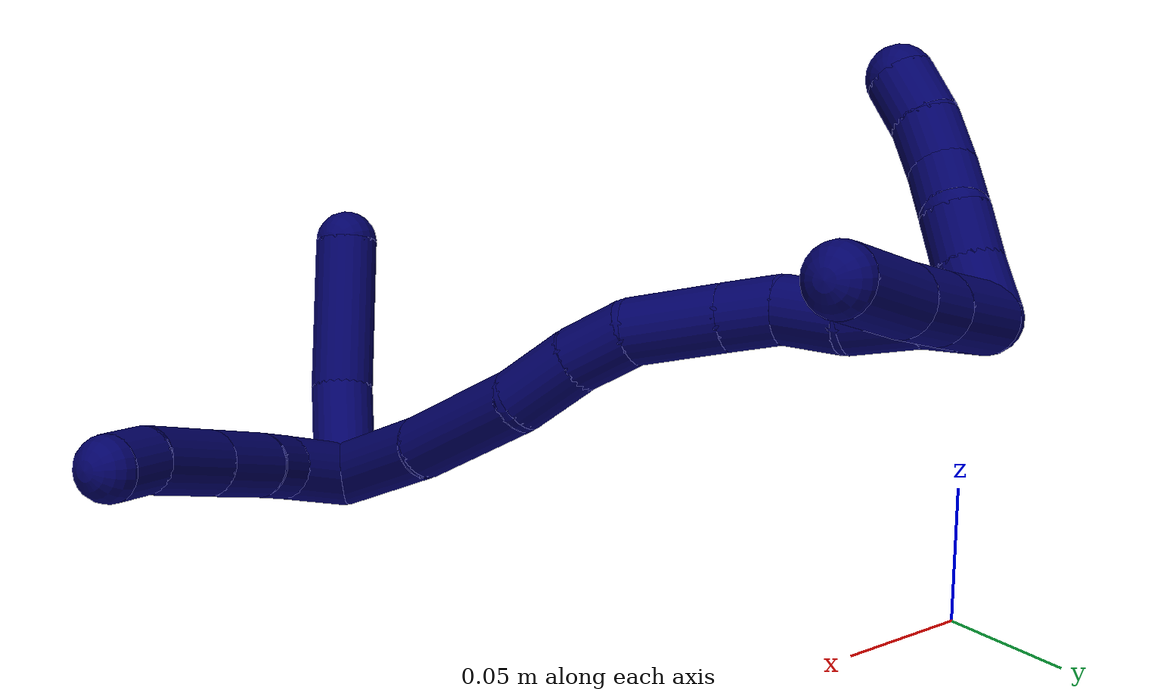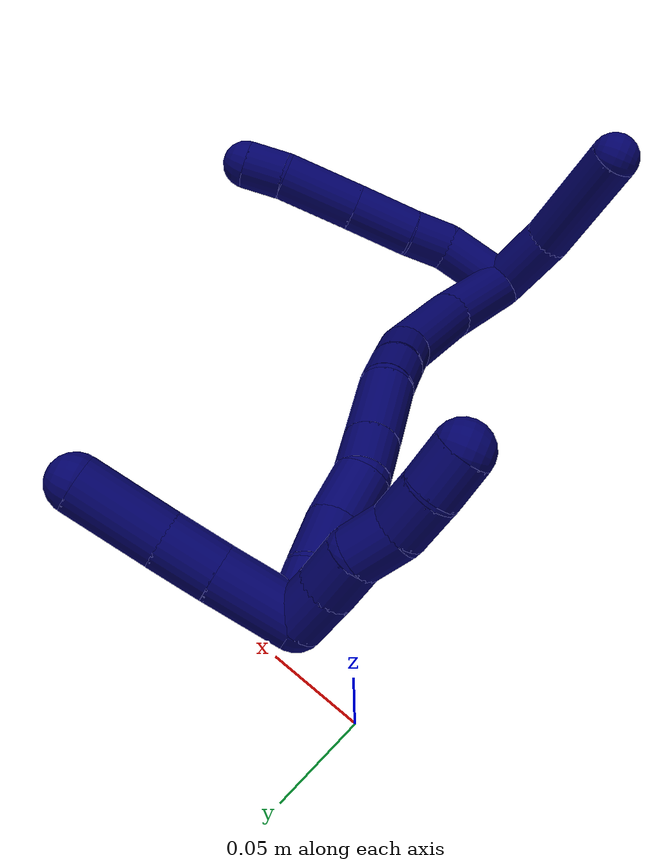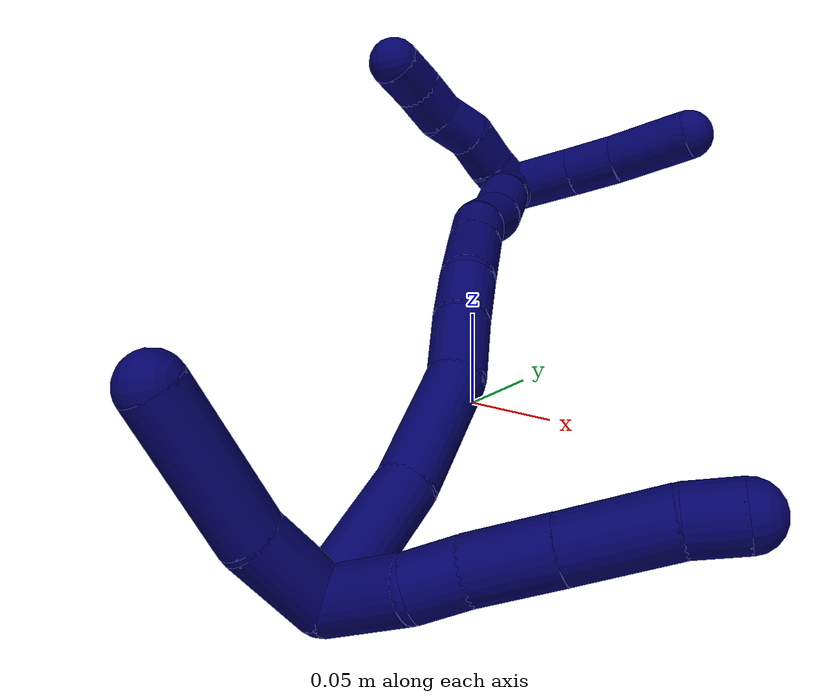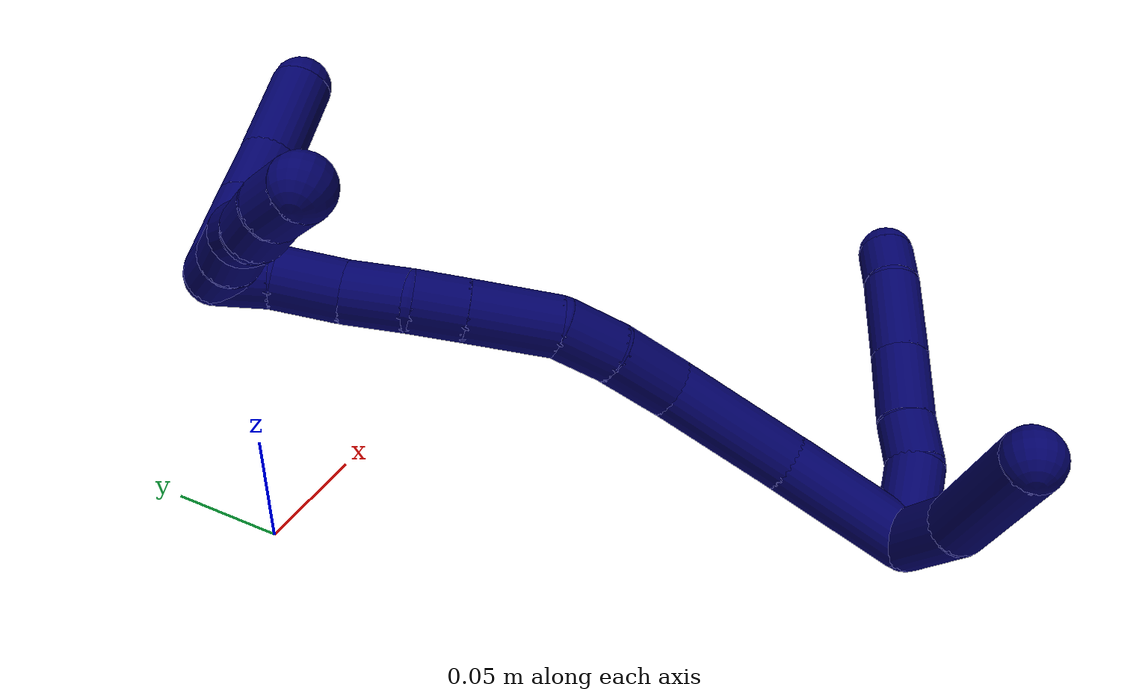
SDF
<sdf version="1.7">
 <world name="default">
  <model name="7">
   <static>0</static>
   <link name="7">
    <collision name="collision-cylinder-e_1_2_8">
     <pose>0.002784 0.002046 -0.017207 -3.02327 0.159282 -1.86465</pose>
     <geometry><cylinder><radius>0.0125</radius><length>0.0351</length></cylinder></geometry>
     <surface>
      <friction><ode><mu>1.16</mu><mu2>1.16</mu2><slip1>0</slip1><slip2>0</slip2></ode></friction>
      <contact><ode><kp>1e+06</kp><kd>1</kd><max_vel>0</max_vel><min_depth>0.001</min_depth></ode></contact>
     </surface>
    </collision>
    <visual name="visual-cylinder-e_1_2_8">
     <pose>0.002784 0.002046 -0.017207 -3.02327 0.159282 -1.86465</pose>
     <geometry><cylinder><radius>0.0125</radius><length>0.0351</length></cylinder></geometry>
     <material><ambient>0.003922 0 0.403922 1</ambient></material>
    </visual>
    <collision name="collision-cylinder-e_2_8_9">
     <pose>0.004096 0.005831 -0.044493 -2.97063 -0.142832 1.39124</pose>
     <geometry><cylinder><radius>0.0125</radius><length>0.020667</length></cylinder></geometry>
     <surface>
      <friction><ode><mu>1.16</mu><mu2>1.16</mu2><slip1>0</slip1><slip2>0</slip2></ode></friction>
      <contact><ode><kp>1e+06</kp><kd>1</kd><max_vel>0</max_vel><min_depth>0.001</min_depth></ode></contact>
     </surface>
    </collision>
    <visual name="visual-cylinder-e_2_8_9">
     <pose>0.004096 0.005831 -0.044493 -2.97063 -0.142832 1.39124</pose>
     <geometry><cylinder><radius>0.0125</radius><length>0.020667</length></cylinder></geometry>
     <material><ambient>0.003922 0 0.403922 1</ambient></material>
    </visual>
    <collision name="collision-cylinder-e_3_9_10">
     <pose>0.001803 0.009622 -0.070991 -3.01734 -0.049663 0.759753</pose>
     <geometry><cylinder><radius>0.0125</radius><length>0.033134</length></cylinder></geometry>
     <surface>
      <friction><ode><mu>1.16</mu><mu2>1.16</mu2><slip1>0</slip1><slip2>0</slip2></ode></friction>
      <contact><ode><kp>1e+06</kp><kd>1</kd><max_vel>0</max_vel><min_depth>0.001</min_depth></ode></contact>
     </surface>
    </collision>
    <visual name="visual-cylinder-e_3_9_10">
     <pose>0.001803 0.009622 -0.070991 -3.01734 -0.049663 0.759753</pose>
     <geometry><cylinder><radius>0.0125</radius><length>0.033134</length></cylinder></geometry>
     <material><ambient>0.003922 0 0.403922 1</ambient></material>
    </visual>
    <collision name="collision-cylinder-e_4_10_11">
     <pose>-0.000267 0.014255 -0.107343 -3.01278 -0.062007 0.89642</pose>
     <geometry><cylinder><radius>0.0125</radius><length>0.040275</length></cylinder></geometry>
     <surface>
      <friction><ode><mu>1.16</mu><mu2>1.16</mu2><slip1>0</slip1><slip2>0</slip2></ode></friction>
      <contact><ode><kp>1e+06</kp><kd>1</kd><max_vel>0</max_vel><min_depth>0.001</min_depth></ode></contact>
     </surface>
    </collision>
    <visual name="visual-cylinder-e_4_10_11">
     <pose>-0.000267 0.014255 -0.107343 -3.01278 -0.062007 0.89642</pose>
     <geometry><cylinder><radius>0.0125</radius><length>0.040275</length></cylinder></geometry>
     <material><ambient>0.003922 0 0.403922 1</ambient></material>
    </visual>
    <collision name="collision-cylinder-e_5_11_6">
     <pose>-0.002541 0.016444 -0.137628 3.10367 -0.09868 -2.40835</pose>
     <geometry><cylinder><radius>0.0125</radius><length>0.020823</length></cylinder></geometry>
     <surface>
      <friction><ode><mu>1.16</mu><mu2>1.16</mu2><slip1>0</slip1><slip2>0</slip2></ode></friction>
      <contact><ode><kp>1e+06</kp><kd>1</kd><max_vel>0</max_vel><min_depth>0.001</min_depth></ode></contact>
     </surface>
    </collision>
    <visual name="visual-cylinder-e_5_11_6">
     <pose>-0.002541 0.016444 -0.137628 3.10367 -0.09868 -2.40835</pose>
     <geometry><cylinder><radius>0.0125</radius><length>0.020823</length></cylinder></geometry>
     <material><ambient>0.003922 0 0.403922 1</ambient></material>
    </visual>
    <collision name="collision-cylinder-e_1_2_12">
     <pose>0.009461 0.014918 0.006562 -1.15639 0.525972 -0.347834</pose>
     <geometry><cylinder><radius>0.0125</radius><length>0.037689</length></cylinder></geometry>
     <surface>
      <friction><ode><mu>1.16</mu><mu2>1.16</mu2><slip1>0</slip1><slip2>0</slip2></ode></friction>
      <contact><ode><kp>1e+06</kp><kd>1</kd><max_vel>0</max_vel><min_depth>0.001</min_depth></ode></contact>
     </surface>
    </collision>
    <visual name="visual-cylinder-e_1_2_12">
     <pose>0.009461 0.014918 0.006562 -1.15639 0.525972 -0.347834</pose>
     <geometry><cylinder><radius>0.0125</radius><length>0.037689</length></cylinder></geometry>
     <material><ambient>0.003922 0 0.403922 1</ambient></material>
    </visual>
    <collision name="collision-cylinder-e_2_12_5">
     <pose>0.029963 0.058221 0.019683 -1.34371 0.362269 -0.289263</pose>
     <geometry><cylinder><radius>0.0125</radius><length>0.062311</length></cylinder></geometry>
     <surface>
      <friction><ode><mu>1.16</mu><mu2>1.16</mu2><slip1>0</slip1><slip2>0</slip2></ode></friction>
      <contact><ode><kp>1e+06</kp><kd>1</kd><max_vel>0</max_vel><min_depth>0.001</min_depth></ode></contact>
     </surface>
    </collision>
    <visual name="visual-cylinder-e_2_12_5">
     <pose>0.029963 0.058221 0.019683 -1.34371 0.362269 -0.289263</pose>
     <geometry><cylinder><radius>0.0125</radius><length>0.062311</length></cylinder></geometry>
     <material><ambient>0.003922 0 0.403922 1</ambient></material>
    </visual>
    <collision name="collision-cylinder-e_1_2_13">
     <pose>-0.023066 0.013605 -0.009305 -2.17069 -0.950341 1.54571</pose>
     <geometry><cylinder><radius>0.0125</radius><length>0.0567</length></cylinder></geometry>
     <surface>
      <friction><ode><mu>1.16</mu><mu2>1.16</mu2><slip1>0</slip1><slip2>0</slip2></ode></friction>
      <contact><ode><kp>1e+06</kp><kd>1</kd><max_vel>0</max_vel><min_depth>0.001</min_depth></ode></contact>
     </surface>
    </collision>
    <visual name="visual-cylinder-e_1_2_13">
     <pose>-0.023066 0.013605 -0.009305 -2.17069 -0.950341 1.54571</pose>
     <geometry><cylinder><radius>0.0125</radius><length>0.0567</length></cylinder></geometry>
     <material><ambient>0.003922 0 0.403922 1</ambient></material>
    </visual>
    <collision name="collision-cylinder-e_2_13_14">
     <pose>-0.06821 0.043458 -0.024743 -1.93164 -0.904269 1.22468</pose>
     <geometry><cylinder><radius>0.0125</radius><length>0.056179</length></cylinder></geometry>
     <surface>
      <friction><ode><mu>1.16</mu><mu2>1.16</mu2><slip1>0</slip1><slip2>0</slip2></ode></friction>
      <contact><ode><kp>1e+06</kp><kd>1</kd><max_vel>0</max_vel><min_depth>0.001</min_depth></ode></contact>
     </surface>
    </collision>
    <visual name="visual-cylinder-e_2_13_14">
     <pose>-0.06821 0.043458 -0.024743 -1.93164 -0.904269 1.22468</pose>
     <geometry><cylinder><radius>0.0125</radius><length>0.056179</length></cylinder></geometry>
     <material><ambient>0.003922 0 0.403922 1</ambient></material>
    </visual>
    <collision name="collision-cylinder-e_3_14_15">
     <pose>-0.100358 0.070422 -0.030775 -1.56154 -0.754327 0.748013</pose>
     <geometry><cylinder><radius>0.0125</radius><length>0.029412</length></cylinder></geometry>
     <surface>
      <friction><ode><mu>1.16</mu><mu2>1.16</mu2><slip1>0</slip1><slip2>0</slip2></ode></friction>
      <contact><ode><kp>1e+06</kp><kd>1</kd><max_vel>0</max_vel><min_depth>0.001</min_depth></ode></contact>
     </surface>
    </collision>
    <visual name="visual-cylinder-e_3_14_15">
     <pose>-0.100358 0.070422 -0.030775 -1.56154 -0.754327 0.748013</pose>
     <geometry><cylinder><radius>0.0125</radius><length>0.029412</length></cylinder></geometry>
     <material><ambient>0.003922 0 0.403922 1</ambient></material>
    </visual>
    <collision name="collision-cylinder-e_4_15_16">
     <pose>-0.120069 0.089045 -0.030524 -1.55155 -0.883811 0.869017</pose>
     <geometry><cylinder><radius>0.0125</radius><length>0.024939</length></cylinder></geometry>
     <surface>
      <friction><ode><mu>1.16</mu><mu2>1.16</mu2><slip1>0</slip1><slip2>0</slip2></ode></friction>
      <contact><ode><kp>1e+06</kp><kd>1</kd><max_vel>0</max_vel><min_depth>0.001</min_depth></ode></contact>
     </surface>
    </collision>
    <visual name="visual-cylinder-e_4_15_16">
     <pose>-0.120069 0.089045 -0.030524 -1.55155 -0.883811 0.869017</pose>
     <geometry><cylinder><radius>0.0125</radius><length>0.024939</length></cylinder></geometry>
     <material><ambient>0.003922 0 0.403922 1</ambient></material>
    </visual>
    <collision name="collision-cylinder-e_5_16_17">
     <pose>-0.146318 0.104147 -0.028337 -1.29522 -1.14776 0.909634</pose>
     <geometry><cylinder><radius>0.0125</radius><length>0.036428</length></cylinder></geometry>
     <surface>
      <friction><ode><mu>1.16</mu><mu2>1.16</mu2><slip1>0</slip1><slip2>0</slip2></ode></friction>
      <contact><ode><kp>1e+06</kp><kd>1</kd><max_vel>0</max_vel><min_depth>0.001</min_depth></ode></contact>
     </surface>
    </collision>
    <visual name="visual-cylinder-e_5_16_17">
     <pose>-0.146318 0.104147 -0.028337 -1.29522 -1.14776 0.909634</pose>
     <geometry><cylinder><radius>0.0125</radius><length>0.036428</length></cylinder></geometry>
     <material><ambient>0.003922 0 0.403922 1</ambient></material>
    </visual>
    <collision name="collision-cylinder-e_6_17_18">
     <pose>-0.172749 0.115481 -0.025135 -1.29582 -1.15812 0.919097</pose>
     <geometry><cylinder><radius>0.0125</radius><length>0.021445</length></cylinder></geometry>
     <surface>
      <friction><ode><mu>1.16</mu><mu2>1.16</mu2><slip1>0</slip1><slip2>0</slip2></ode></friction>
      <contact><ode><kp>1e+06</kp><kd>1</kd><max_vel>0</max_vel><min_depth>0.001</min_depth></ode></contact>
     </surface>
    </collision>
    <visual name="visual-cylinder-e_6_17_18">
     <pose>-0.172749 0.115481 -0.025135 -1.29582 -1.15812 0.919097</pose>
     <geometry><cylinder><radius>0.0125</radius><length>0.021445</length></cylinder></geometry>
     <material><ambient>0.003922 0 0.403922 1</ambient></material>
    </visual>
    <collision name="collision-cylinder-e_7_18_19">
     <pose>-0.195193 0.121295 -0.025112 -2.17031 -1.41142 2.03245</pose>
     <geometry><cylinder><radius>0.0125</radius><length>0.025568</length></cylinder></geometry>
     <surface>
      <friction><ode><mu>1.16</mu><mu2>1.16</mu2><slip1>0</slip1><slip2>0</slip2></ode></friction>
      <contact><ode><kp>1e+06</kp><kd>1</kd><max_vel>0</max_vel><min_depth>0.001</min_depth></ode></contact>
     </surface>
    </collision>
    <visual name="visual-cylinder-e_7_18_19">
     <pose>-0.195193 0.121295 -0.025112 -2.17031 -1.41142 2.03245</pose>
     <geometry><cylinder><radius>0.0125</radius><length>0.025568</length></cylinder></geometry>
     <material><ambient>0.003922 0 0.403922 1</ambient></material>
    </visual>
    <collision name="collision-cylinder-e_8_19_20">
     <pose>-0.220492 0.127803 -0.025921 -1.50154 -1.20576 1.14185</pose>
     <geometry><cylinder><radius>0.0125</radius><length>0.027143</length></cylinder></geometry>
     <surface>
      <friction><ode><mu>1.16</mu><mu2>1.16</mu2><slip1>0</slip1><slip2>0</slip2></ode></friction>
      <contact><ode><kp>1e+06</kp><kd>1</kd><max_vel>0</max_vel><min_depth>0.001</min_depth></ode></contact>
     </surface>
    </collision>
    <visual name="visual-cylinder-e_8_19_20">
     <pose>-0.220492 0.127803 -0.025921 -1.50154 -1.20576 1.14185</pose>
     <geometry><cylinder><radius>0.0125</radius><length>0.027143</length></cylinder></geometry>
     <material><ambient>0.003922 0 0.403922 1</ambient></material>
    </visual>
    <collision name="collision-cylinder-e_9_20_1">
     <pose>-0.244081 0.13455 -0.025009 -1.27801 -1.38968 1.10898</pose>
     <geometry><cylinder><radius>0.0125</radius><length>0.022187</length></cylinder></geometry>
     <surface>
      <friction><ode><mu>1.16</mu><mu2>1.16</mu2><slip1>0</slip1><slip2>0</slip2></ode></friction>
      <contact><ode><kp>1e+06</kp><kd>1</kd><max_vel>0</max_vel><min_depth>0.001</min_depth></ode></contact>
     </surface>
    </collision>
    <visual name="visual-cylinder-e_9_20_1">
     <pose>-0.244081 0.13455 -0.025009 -1.27801 -1.38968 1.10898</pose>
     <geometry><cylinder><radius>0.0125</radius><length>0.022187</length></cylinder></geometry>
     <material><ambient>0.003922 0 0.403922 1</ambient></material>
    </visual>
    <collision name="collision-cylinder-e_1_1_21">
     <pose>-0.253092 0.138039 -0.042237 -3.05329 0.105993 -1.75265</pose>
     <geometry><cylinder><radius>0.0125</radius><length>0.035951</length></cylinder></geometry>
     <surface>
      <friction><ode><mu>1.16</mu><mu2>1.16</mu2><slip1>0</slip1><slip2>0</slip2></ode></friction>
      <contact><ode><kp>1e+06</kp><kd>1</kd><max_vel>0</max_vel><min_depth>0.001</min_depth></ode></contact>
     </surface>
    </collision>
    <visual name="visual-cylinder-e_1_1_21">
     <pose>-0.253092 0.138039 -0.042237 -3.05329 0.105993 -1.75265</pose>
     <geometry><cylinder><radius>0.0125</radius><length>0.035951</length></cylinder></geometry>
     <material><ambient>0.003922 0 0.403922 1</ambient></material>
    </visual>
    <collision name="collision-cylinder-e_2_21_22">
     <pose>-0.249681 0.140798 -0.072112 -3.04395 0.123797 -1.80641</pose>
     <geometry><cylinder><radius>0.0125</radius><length>0.024442</length></cylinder></geometry>
     <surface>
      <friction><ode><mu>1.16</mu><mu2>1.16</mu2><slip1>0</slip1><slip2>0</slip2></ode></friction>
      <contact><ode><kp>1e+06</kp><kd>1</kd><max_vel>0</max_vel><min_depth>0.001</min_depth></ode></contact>
     </surface>
    </collision>
    <visual name="visual-cylinder-e_2_21_22">
     <pose>-0.249681 0.140798 -0.072112 -3.04395 0.123797 -1.80641</pose>
     <geometry><cylinder><radius>0.0125</radius><length>0.024442</length></cylinder></geometry>
     <material><ambient>0.003922 0 0.403922 1</ambient></material>
    </visual>
    <collision name="collision-cylinder-e_3_22_4">
     <pose>-0.245691 0.14475 -0.103633 -3.00013 0.125627 -1.45197</pose>
     <geometry><cylinder><radius>0.0125</radius><length>0.039607</length></cylinder></geometry>
     <surface>
      <friction><ode><mu>1.16</mu><mu2>1.16</mu2><slip1>0</slip1><slip2>0</slip2></ode></friction>
      <contact><ode><kp>1e+06</kp><kd>1</kd><max_vel>0</max_vel><min_depth>0.001</min_depth></ode></contact>
     </surface>
    </collision>
    <visual name="visual-cylinder-e_3_22_4">
     <pose>-0.245691 0.14475 -0.103633 -3.00013 0.125627 -1.45197</pose>
     <geometry><cylinder><radius>0.0125</radius><length>0.039607</length></cylinder></geometry>
     <material><ambient>0.003922 0 0.403922 1</ambient></material>
    </visual>
    <collision name="collision-cylinder-e_1_1_23">
     <pose>-0.248782 0.143691 -0.021405 -1.17417 0.670254 -0.455393</pose>
     <geometry><cylinder><radius>0.0125</radius><length>0.02</length></cylinder></geometry>
     <surface>
      <friction><ode><mu>1.16</mu><mu2>1.16</mu2><slip1>0</slip1><slip2>0</slip2></ode></friction>
      <contact><ode><kp>1e+06</kp><kd>1</kd><max_vel>0</max_vel><min_depth>0.001</min_depth></ode></contact>
     </surface>
    </collision>
    <visual name="visual-cylinder-e_1_1_23">
     <pose>-0.248782 0.143691 -0.021405 -1.17417 0.670254 -0.455393</pose>
     <geometry><cylinder><radius>0.0125</radius><length>0.02</length></cylinder></geometry>
     <material><ambient>0.003922 0 0.403922 1</ambient></material>
    </visual>
    <collision name="collision-cylinder-e_2_23_24">
     <pose>-0.236866 0.158754 -0.015911 -1.26579 0.60702 -0.451643</pose>
     <geometry><cylinder><radius>0.0125</radius><length>0.02</length></cylinder></geometry>
     <surface>
      <friction><ode><mu>1.16</mu><mu2>1.16</mu2><slip1>0</slip1><slip2>0</slip2></ode></friction>
      <contact><ode><kp>1e+06</kp><kd>1</kd><max_vel>0</max_vel><min_depth>0.001</min_depth></ode></contact>
     </surface>
    </collision>
    <visual name="visual-cylinder-e_2_23_24">
     <pose>-0.236866 0.158754 -0.015911 -1.26579 0.60702 -0.451643</pose>
     <geometry><cylinder><radius>0.0125</radius><length>0.02</length></cylinder></geometry>
     <material><ambient>0.003922 0 0.403922 1</ambient></material>
    </visual>
    <collision name="collision-cylinder-e_3_24_25">
     <pose>-0.225175 0.172542 -0.008086 -0.837951 0.641835 -0.293937</pose>
     <geometry><cylinder><radius>0.0125</radius><length>0.02</length></cylinder></geometry>
     <surface>
      <friction><ode><mu>1.16</mu><mu2>1.16</mu2><slip1>0</slip1><slip2>0</slip2></ode></friction>
      <contact><ode><kp>1e+06</kp><kd>1</kd><max_vel>0</max_vel><min_depth>0.001</min_depth></ode></contact>
     </surface>
    </collision>
    <visual name="visual-cylinder-e_3_24_25">
     <pose>-0.225175 0.172542 -0.008086 -0.837951 0.641835 -0.293937</pose>
     <geometry><cylinder><radius>0.0125</radius><length>0.02</length></cylinder></geometry>
     <material><ambient>0.003922 0 0.403922 1</ambient></material>
    </visual>
    <collision name="collision-cylinder-e_4_25_26">
     <pose>-0.212812 0.185716 -4.3e-05 -1.21482 0.691442 -0.490626</pose>
     <geometry><cylinder><radius>0.0125</radius><length>0.02</length></cylinder></geometry>
     <surface>
      <friction><ode><mu>1.16</mu><mu2>1.16</mu2><slip1>0</slip1><slip2>0</slip2></ode></friction>
      <contact><ode><kp>1e+06</kp><kd>1</kd><max_vel>0</max_vel><min_depth>0.001</min_depth></ode></contact>
     </surface>
    </collision>
    <visual name="visual-cylinder-e_4_25_26">
     <pose>-0.212812 0.185716 -4.3e-05 -1.21482 0.691442 -0.490626</pose>
     <geometry><cylinder><radius>0.0125</radius><length>0.02</length></cylinder></geometry>
     <material><ambient>0.003922 0 0.403922 1</ambient></material>
    </visual>
    <collision name="collision-cylinder-e_5_26_3">
     <pose>-0.198964 0.199134 0.005043 -1.20123 0.84374 -0.59657</pose>
     <geometry><cylinder><radius>0.0125</radius><length>0.02</length></cylinder></geometry>
     <surface>
      <friction><ode><mu>1.16</mu><mu2>1.16</mu2><slip1>0</slip1><slip2>0</slip2></ode></friction>
      <contact><ode><kp>1e+06</kp><kd>1</kd><max_vel>0</max_vel><min_depth>0.001</min_depth></ode></contact>
     </surface>
    </collision>
    <visual name="visual-cylinder-e_5_26_3">
     <pose>-0.198964 0.199134 0.005043 -1.20123 0.84374 -0.59657</pose>
     <geometry><cylinder><radius>0.0125</radius><length>0.02</length></cylinder></geometry>
     <material><ambient>0.003922 0 0.403922 1</ambient></material>
    </visual>
    <collision name="collision-sphere-3">
     <pose>-0.191492 0.205332 0.007443 0 -0 0</pose>
     <geometry><sphere><radius>0.0125</radius></sphere></geometry>
     <surface>
      <friction><ode><mu>1.16</mu><mu2>1.16</mu2><slip1>0</slip1><slip2>0</slip2></ode></friction>
      <contact><ode><kp>1e+06</kp><kd>1</kd><max_vel>0</max_vel><min_depth>0.001</min_depth></ode></contact>
     </surface>
    </collision>
    <visual name="visual-sphere-3">
     <pose>-0.191492 0.205332 0.007443 0 -0 0</pose>
     <geometry><sphere><radius>0.0125</radius></sphere></geometry>
     <material><ambient>0.003922 0 0.403922 1</ambient></material>
    </visual>
    <collision name="collision-sphere-26">
     <pose>-0.206435 0.192936 0.002642 0 -0 0</pose>
     <geometry><sphere><radius>0.0125</radius></sphere></geometry>
     <surface>
      <friction><ode><mu>1.16</mu><mu2>1.16</mu2><slip1>0</slip1><slip2>0</slip2></ode></friction>
      <contact><ode><kp>1e+06</kp><kd>1</kd><max_vel>0</max_vel><min_depth>0.001</min_depth></ode></contact>
     </surface>
    </collision>
    <visual name="visual-sphere-26">
     <pose>-0.206435 0.192936 0.002642 0 -0 0</pose>
     <geometry><sphere><radius>0.0125</radius></sphere></geometry>
     <material><ambient>0.003922 0 0.403922 1</ambient></material>
    </visual>
    <collision name="collision-sphere-25">
     <pose>-0.219188 0.178495 -0.002728 0 -0 0</pose>
     <geometry><sphere><radius>0.0125</radius></sphere></geometry>
     <surface>
      <friction><ode><mu>1.16</mu><mu2>1.16</mu2><slip1>0</slip1><slip2>0</slip2></ode></friction>
      <contact><ode><kp>1e+06</kp><kd>1</kd><max_vel>0</max_vel><min_depth>0.001</min_depth></ode></contact>
     </surface>
    </collision>
    <visual name="visual-sphere-25">
     <pose>-0.219188 0.178495 -0.002728 0 -0 0</pose>
     <geometry><sphere><radius>0.0125</radius></sphere></geometry>
     <material><ambient>0.003922 0 0.403922 1</ambient></material>
    </visual>
    <collision name="collision-sphere-24">
     <pose>-0.231161 0.166588 -0.013445 0 -0 0</pose>
     <geometry><sphere><radius>0.0125</radius></sphere></geometry>
     <surface>
      <friction><ode><mu>1.16</mu><mu2>1.16</mu2><slip1>0</slip1><slip2>0</slip2></ode></friction>
      <contact><ode><kp>1e+06</kp><kd>1</kd><max_vel>0</max_vel><min_depth>0.001</min_depth></ode></contact>
     </surface>
    </collision>
    <visual name="visual-sphere-24">
     <pose>-0.231161 0.166588 -0.013445 0 -0 0</pose>
     <geometry><sphere><radius>0.0125</radius></sphere></geometry>
     <material><ambient>0.003922 0 0.403922 1</ambient></material>
    </visual>
    <collision name="collision-sphere-23">
     <pose>-0.24257 0.150919 -0.018378 0 -0 0</pose>
     <geometry><sphere><radius>0.0125</radius></sphere></geometry>
     <surface>
      <friction><ode><mu>1.16</mu><mu2>1.16</mu2><slip1>0</slip1><slip2>0</slip2></ode></friction>
      <contact><ode><kp>1e+06</kp><kd>1</kd><max_vel>0</max_vel><min_depth>0.001</min_depth></ode></contact>
     </surface>
    </collision>
    <visual name="visual-sphere-23">
     <pose>-0.24257 0.150919 -0.018378 0 -0 0</pose>
     <geometry><sphere><radius>0.0125</radius></sphere></geometry>
     <material><ambient>0.003922 0 0.403922 1</ambient></material>
    </visual>
    <collision name="collision-sphere-4">
     <pose>-0.243209 0.147521 -0.123084 0 -0 0</pose>
     <geometry><sphere><radius>0.0125</radius></sphere></geometry>
     <surface>
      <friction><ode><mu>1.16</mu><mu2>1.16</mu2><slip1>0</slip1><slip2>0</slip2></ode></friction>
      <contact><ode><kp>1e+06</kp><kd>1</kd><max_vel>0</max_vel><min_depth>0.001</min_depth></ode></contact>
     </surface>
    </collision>
    <visual name="visual-sphere-4">
     <pose>-0.243209 0.147521 -0.123084 0 -0 0</pose>
     <geometry><sphere><radius>0.0125</radius></sphere></geometry>
     <material><ambient>0.003922 0 0.403922 1</ambient></material>
    </visual>
    <collision name="collision-sphere-22">
     <pose>-0.248172 0.14198 -0.084181 0 -0 0</pose>
     <geometry><sphere><radius>0.0125</radius></sphere></geometry>
     <surface>
      <friction><ode><mu>1.16</mu><mu2>1.16</mu2><slip1>0</slip1><slip2>0</slip2></ode></friction>
      <contact><ode><kp>1e+06</kp><kd>1</kd><max_vel>0</max_vel><min_depth>0.001</min_depth></ode></contact>
     </surface>
    </collision>
    <visual name="visual-sphere-22">
     <pose>-0.248172 0.14198 -0.084181 0 -0 0</pose>
     <geometry><sphere><radius>0.0125</radius></sphere></geometry>
     <material><ambient>0.003922 0 0.403922 1</ambient></material>
    </visual>
    <collision name="collision-sphere-21">
     <pose>-0.25119 0.139616 -0.060042 0 -0 0</pose>
     <geometry><sphere><radius>0.0125</radius></sphere></geometry>
     <surface>
      <friction><ode><mu>1.16</mu><mu2>1.16</mu2><slip1>0</slip1><slip2>0</slip2></ode></friction>
      <contact><ode><kp>1e+06</kp><kd>1</kd><max_vel>0</max_vel><min_depth>0.001</min_depth></ode></contact>
     </surface>
    </collision>
    <visual name="visual-sphere-21">
     <pose>-0.25119 0.139616 -0.060042 0 -0 0</pose>
     <geometry><sphere><radius>0.0125</radius></sphere></geometry>
     <material><ambient>0.003922 0 0.403922 1</ambient></material>
    </visual>
    <collision name="collision-sphere-1">
     <pose>-0.254994 0.136463 -0.024432 0 -0 0</pose>
     <geometry><sphere><radius>0.0125</radius></sphere></geometry>
     <surface>
      <friction><ode><mu>1.16</mu><mu2>1.16</mu2><slip1>0</slip1><slip2>0</slip2></ode></friction>
      <contact><ode><kp>1e+06</kp><kd>1</kd><max_vel>0</max_vel><min_depth>0.001</min_depth></ode></contact>
     </surface>
    </collision>
    <visual name="visual-sphere-1">
     <pose>-0.254994 0.136463 -0.024432 0 -0 0</pose>
     <geometry><sphere><radius>0.0125</radius></sphere></geometry>
     <material><ambient>0.003922 0 0.403922 1</ambient></material>
    </visual>
    <collision name="collision-sphere-6">
     <pose>-0.003567 0.016051 -0.147982 0 -0 0</pose>
     <geometry><sphere><radius>0.0125</radius></sphere></geometry>
     <surface>
      <friction><ode><mu>1.16</mu><mu2>1.16</mu2><slip1>0</slip1><slip2>0</slip2></ode></friction>
      <contact><ode><kp>1e+06</kp><kd>1</kd><max_vel>0</max_vel><min_depth>0.001</min_depth></ode></contact>
     </surface>
    </collision>
    <visual name="visual-sphere-6">
     <pose>-0.003567 0.016051 -0.147982 0 -0 0</pose>
     <geometry><sphere><radius>0.0125</radius></sphere></geometry>
     <material><ambient>0.003922 0 0.403922 1</ambient></material>
    </visual>
    <collision name="collision-sphere-11">
     <pose>-0.001515 0.016837 -0.127275 0 -0 0</pose>
     <geometry><sphere><radius>0.0125</radius></sphere></geometry>
     <surface>
      <friction><ode><mu>1.16</mu><mu2>1.16</mu2><slip1>0</slip1><slip2>0</slip2></ode></friction>
      <contact><ode><kp>1e+06</kp><kd>1</kd><max_vel>0</max_vel><min_depth>0.001</min_depth></ode></contact>
     </surface>
    </collision>
    <visual name="visual-sphere-11">
     <pose>-0.001515 0.016837 -0.127275 0 -0 0</pose>
     <geometry><sphere><radius>0.0125</radius></sphere></geometry>
     <material><ambient>0.003922 0 0.403922 1</ambient></material>
    </visual>
    <collision name="collision-sphere-10">
     <pose>0.00098 0.011673 -0.08741 0 -0 0</pose>
     <geometry><sphere><radius>0.0125</radius></sphere></geometry>
     <surface>
      <friction><ode><mu>1.16</mu><mu2>1.16</mu2><slip1>0</slip1><slip2>0</slip2></ode></friction>
      <contact><ode><kp>1e+06</kp><kd>1</kd><max_vel>0</max_vel><min_depth>0.001</min_depth></ode></contact>
     </surface>
    </collision>
    <visual name="visual-sphere-10">
     <pose>0.00098 0.011673 -0.08741 0 -0 0</pose>
     <geometry><sphere><radius>0.0125</radius></sphere></geometry>
     <material><ambient>0.003922 0 0.403922 1</ambient></material>
    </visual>
    <collision name="collision-sphere-9">
     <pose>0.002625 0.007572 -0.054572 0 -0 0</pose>
     <geometry><sphere><radius>0.0125</radius></sphere></geometry>
     <surface>
      <friction><ode><mu>1.16</mu><mu2>1.16</mu2><slip1>0</slip1><slip2>0</slip2></ode></friction>
      <contact><ode><kp>1e+06</kp><kd>1</kd><max_vel>0</max_vel><min_depth>0.001</min_depth></ode></contact>
     </surface>
    </collision>
    <visual name="visual-sphere-9">
     <pose>0.002625 0.007572 -0.054572 0 -0 0</pose>
     <geometry><sphere><radius>0.0125</radius></sphere></geometry>
     <material><ambient>0.003922 0 0.403922 1</ambient></material>
    </visual>
    <collision name="collision-sphere-2">
     <geometry><sphere><radius>0.0125</radius></sphere></geometry>
     <surface>
      <friction><ode><mu>1.16</mu><mu2>1.16</mu2><slip1>0</slip1><slip2>0</slip2></ode></friction>
      <contact><ode><kp>1e+06</kp><kd>1</kd><max_vel>0</max_vel><min_depth>0.001</min_depth></ode></contact>
     </surface>
    </collision>
    <visual name="visual-sphere-2">
     <geometry><sphere><radius>0.0125</radius></sphere></geometry>
     <material><ambient>0.003922 0 0.403922 1</ambient></material>
    </visual>
    <collision name="collision-sphere-19">
     <pose>-0.207814 0.12297 -0.026256 0 -0 0</pose>
     <geometry><sphere><radius>0.0125</radius></sphere></geometry>
     <surface>
      <friction><ode><mu>1.16</mu><mu2>1.16</mu2><slip1>0</slip1><slip2>0</slip2></ode></friction>
      <contact><ode><kp>1e+06</kp><kd>1</kd><max_vel>0</max_vel><min_depth>0.001</min_depth></ode></contact>
     </surface>
    </collision>
    <visual name="visual-sphere-19">
     <pose>-0.207814 0.12297 -0.026256 0 -0 0</pose>
     <geometry><sphere><radius>0.0125</radius></sphere></geometry>
     <material><ambient>0.003922 0 0.403922 1</ambient></material>
    </visual>
    <collision name="collision-sphere-8">
     <pose>0.005567 0.004091 -0.034414 0 -0 0</pose>
     <geometry><sphere><radius>0.0125</radius></sphere></geometry>
     <surface>
      <friction><ode><mu>1.16</mu><mu2>1.16</mu2><slip1>0</slip1><slip2>0</slip2></ode></friction>
      <contact><ode><kp>1e+06</kp><kd>1</kd><max_vel>0</max_vel><min_depth>0.001</min_depth></ode></contact>
     </surface>
    </collision>
    <visual name="visual-sphere-8">
     <pose>0.005567 0.004091 -0.034414 0 -0 0</pose>
     <geometry><sphere><radius>0.0125</radius></sphere></geometry>
     <material><ambient>0.003922 0 0.403922 1</ambient></material>
    </visual>
    <collision name="collision-sphere-12">
     <pose>0.018922 0.029836 0.013124 0 -0 0</pose>
     <geometry><sphere><radius>0.0125</radius></sphere></geometry>
     <surface>
      <friction><ode><mu>1.16</mu><mu2>1.16</mu2><slip1>0</slip1><slip2>0</slip2></ode></friction>
      <contact><ode><kp>1e+06</kp><kd>1</kd><max_vel>0</max_vel><min_depth>0.001</min_depth></ode></contact>
     </surface>
    </collision>
    <visual name="visual-sphere-12">
     <pose>0.018922 0.029836 0.013124 0 -0 0</pose>
     <geometry><sphere><radius>0.0125</radius></sphere></geometry>
     <material><ambient>0.003922 0 0.403922 1</ambient></material>
    </visual>
    <collision name="collision-sphere-5">
     <pose>0.041005 0.086607 0.026242 0 -0 0</pose>
     <geometry><sphere><radius>0.0125</radius></sphere></geometry>
     <surface>
      <friction><ode><mu>1.16</mu><mu2>1.16</mu2><slip1>0</slip1><slip2>0</slip2></ode></friction>
      <contact><ode><kp>1e+06</kp><kd>1</kd><max_vel>0</max_vel><min_depth>0.001</min_depth></ode></contact>
     </surface>
    </collision>
    <visual name="visual-sphere-5">
     <pose>0.041005 0.086607 0.026242 0 -0 0</pose>
     <geometry><sphere><radius>0.0125</radius></sphere></geometry>
     <material><ambient>0.003922 0 0.403922 1</ambient></material>
    </visual>
    <collision name="collision-sphere-13">
     <pose>-0.046132 0.02721 -0.018611 0 -0 0</pose>
     <geometry><sphere><radius>0.0125</radius></sphere></geometry>
     <surface>
      <friction><ode><mu>1.16</mu><mu2>1.16</mu2><slip1>0</slip1><slip2>0</slip2></ode></friction>
      <contact><ode><kp>1e+06</kp><kd>1</kd><max_vel>0</max_vel><min_depth>0.001</min_depth></ode></contact>
     </surface>
    </collision>
    <visual name="visual-sphere-13">
     <pose>-0.046132 0.02721 -0.018611 0 -0 0</pose>
     <geometry><sphere><radius>0.0125</radius></sphere></geometry>
     <material><ambient>0.003922 0 0.403922 1</ambient></material>
    </visual>
    <collision name="collision-sphere-14">
     <pose>-0.090287 0.059706 -0.030874 0 -0 0</pose>
     <geometry><sphere><radius>0.0125</radius></sphere></geometry>
     <surface>
      <friction><ode><mu>1.16</mu><mu2>1.16</mu2><slip1>0</slip1><slip2>0</slip2></ode></friction>
      <contact><ode><kp>1e+06</kp><kd>1</kd><max_vel>0</max_vel><min_depth>0.001</min_depth></ode></contact>
     </surface>
    </collision>
    <visual name="visual-sphere-14">
     <pose>-0.090287 0.059706 -0.030874 0 -0 0</pose>
     <geometry><sphere><radius>0.0125</radius></sphere></geometry>
     <material><ambient>0.003922 0 0.403922 1</ambient></material>
    </visual>
    <collision name="collision-sphere-15">
     <pose>-0.110428 0.081139 -0.030676 0 -0 0</pose>
     <geometry><sphere><radius>0.0125</radius></sphere></geometry>
     <surface>
      <friction><ode><mu>1.16</mu><mu2>1.16</mu2><slip1>0</slip1><slip2>0</slip2></ode></friction>
      <contact><ode><kp>1e+06</kp><kd>1</kd><max_vel>0</max_vel><min_depth>0.001</min_depth></ode></contact>
     </surface>
    </collision>
    <visual name="visual-sphere-15">
     <pose>-0.110428 0.081139 -0.030676 0 -0 0</pose>
     <geometry><sphere><radius>0.0125</radius></sphere></geometry>
     <material><ambient>0.003922 0 0.403922 1</ambient></material>
    </visual>
    <collision name="collision-sphere-16">
     <pose>-0.12971 0.096952 -0.030371 0 -0 0</pose>
     <geometry><sphere><radius>0.0125</radius></sphere></geometry>
     <surface>
      <friction><ode><mu>1.16</mu><mu2>1.16</mu2><slip1>0</slip1><slip2>0</slip2></ode></friction>
      <contact><ode><kp>1e+06</kp><kd>1</kd><max_vel>0</max_vel><min_depth>0.001</min_depth></ode></contact>
     </surface>
    </collision>
    <visual name="visual-sphere-16">
     <pose>-0.12971 0.096952 -0.030371 0 -0 0</pose>
     <geometry><sphere><radius>0.0125</radius></sphere></geometry>
     <material><ambient>0.003922 0 0.403922 1</ambient></material>
    </visual>
    <collision name="collision-sphere-17">
     <pose>-0.162927 0.111342 -0.026302 0 -0 0</pose>
     <geometry><sphere><radius>0.0125</radius></sphere></geometry>
     <surface>
      <friction><ode><mu>1.16</mu><mu2>1.16</mu2><slip1>0</slip1><slip2>0</slip2></ode></friction>
      <contact><ode><kp>1e+06</kp><kd>1</kd><max_vel>0</max_vel><min_depth>0.001</min_depth></ode></contact>
     </surface>
    </collision>
    <visual name="visual-sphere-17">
     <pose>-0.162927 0.111342 -0.026302 0 -0 0</pose>
     <geometry><sphere><radius>0.0125</radius></sphere></geometry>
     <material><ambient>0.003922 0 0.403922 1</ambient></material>
    </visual>
    <collision name="collision-sphere-18">
     <pose>-0.182571 0.11962 -0.023967 0 -0 0</pose>
     <geometry><sphere><radius>0.0125</radius></sphere></geometry>
     <surface>
      <friction><ode><mu>1.16</mu><mu2>1.16</mu2><slip1>0</slip1><slip2>0</slip2></ode></friction>
      <contact><ode><kp>1e+06</kp><kd>1</kd><max_vel>0</max_vel><min_depth>0.001</min_depth></ode></contact>
     </surface>
    </collision>
    <visual name="visual-sphere-18">
     <pose>-0.182571 0.11962 -0.023967 0 -0 0</pose>
     <geometry><sphere><radius>0.0125</radius></sphere></geometry>
     <material><ambient>0.003922 0 0.403922 1</ambient></material>
    </visual>
    <collision name="collision-sphere-20">
     <pose>-0.233169 0.132636 -0.025586 0 -0 0</pose>
     <geometry><sphere><radius>0.0125</radius></sphere></geometry>
     <surface>
      <friction><ode><mu>1.16</mu><mu2>1.16</mu2><slip1>0</slip1><slip2>0</slip2></ode></friction>
      <contact><ode><kp>1e+06</kp><kd>1</kd><max_vel>0</max_vel><min_depth>0.001</min_depth></ode></contact>
     </surface>
    </collision>
    <visual name="visual-sphere-20">
     <pose>-0.233169 0.132636 -0.025586 0 -0 0</pose>
     <geometry><sphere><radius>0.0125</radius></sphere></geometry>
     <material><ambient>0.003922 0 0.403922 1</ambient></material>
    </visual>
    <inertial>
     <pose>-0.108659 0.080376 -0.033121 0 -0 0</pose>
     <mass>0.75</mass>
     <inertia><ixx>3.9e-05</ixx><ixy>0</ixy><ixz>0</ixz><iyy>7.9e-05</iyy><iyz>0</iyz><izz>-4.9e-05</izz></inertia>
    </inertial>
   </link>
   <pose>0.106075 -0.234534 0.01246 1.77781 -0.12653 -1.22993</pose>
  </model>
 </world>
</sdf>
